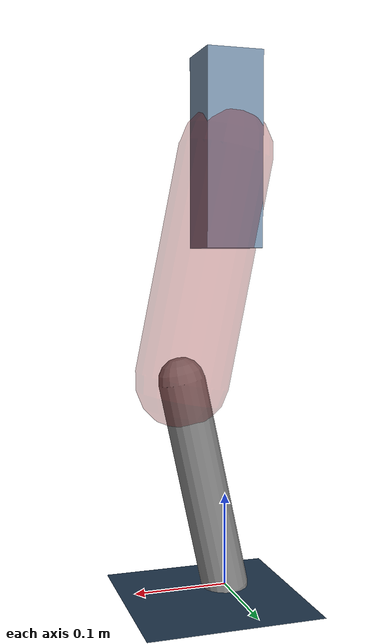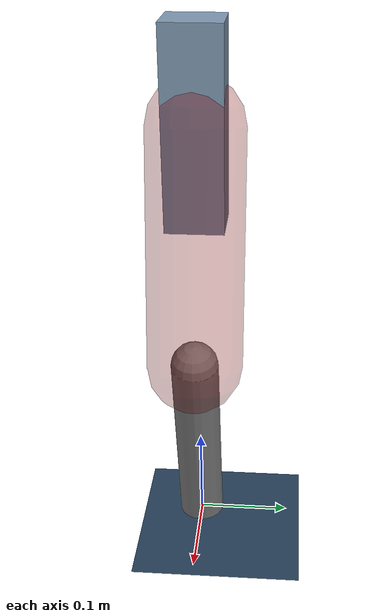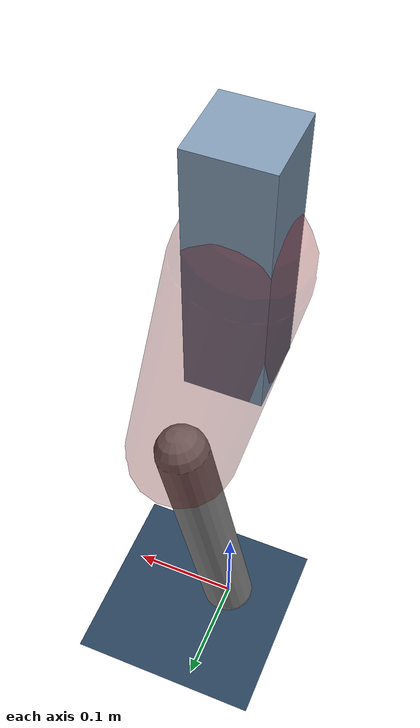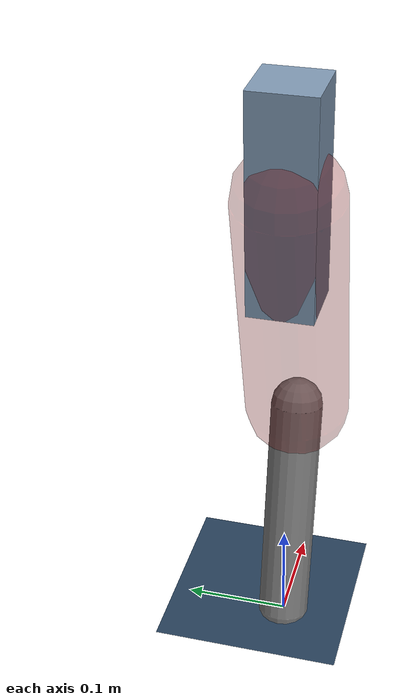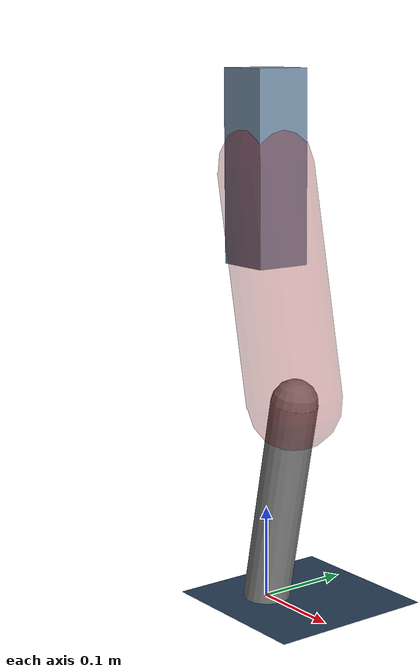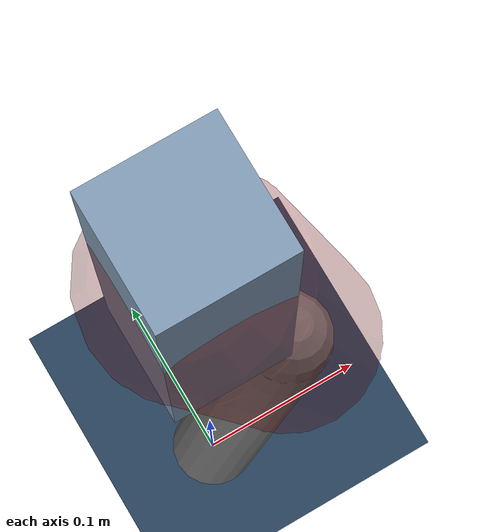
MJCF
<mujoco model="Hopper2D">
	<compiler inertiafromgeom="true" angle="radian" />
	<option timestep="0.001" integrator="implicit" cone="elliptic" solver="Newton" tolerance="1e-10" />

	<default>
		<geom contype="1" conaffinity="1" condim="3" friction="2 0.005 0.0001" solref="0.005 1" />
		<joint limited="true" damping="0.1" />
	</default>

	<asset>
		<texture name="skybox" type="skybox" builtin="gradient" rgb1=".4 .6 .8" rgb2="0 0 0" width="800" height="800" />
		<texture name="grid" type="2d" builtin="checker" rgb1=".1 .2 .3" rgb2=".2 .3 .4" width="300" height="300" mark="edge" markrgb=".2 .3 .4" />
		<material name="ground" texture="grid" texrepeat="1 1" texuniform="true" reflectance="0.1" />
		<material name="leg" rgba="0.5 0.6 0.7 1" />
	</asset>

	<worldbody>

		<geom name="floor" type="plane" size="5 5 0.25" material="ground" />

		<light directional="false" diffuse="0.8 0.8 0.8" specular="0.3 0.3 0.3" pos="0 0 2" dir="0 0 -1" />
		<light mode="targetbodycom" target="base" directional="false" diffuse="0.8 0.8 0.8" specular="0.3 0.3 0.3" pos="0 0 2" dir="0 0 -1" />

		<camera name="fixed" pos="0 -2 1" xyaxes="1 0 0 0 0 1" />
		<camera name="tracking" mode="trackcom" pos="0 -3 1" />

		<body name="root" pos="0 0 0.46391266159865896">
			<joint name="slide_x" type="slide" axis="1 0 0" range="-100 100" />
			<joint name="slide_z" type="slide" axis="0 0 1" range="0 10" />

			<body name="base" pos="0 0 0">
				<geom name="torso" type="box" size="0.03 0.03 0.1" mass="3.1109999999999998" material="leg" />

				<body name="link1" pos="0 0 0" euler="0 1.3707994913185462 0">
					<joint type="hinge" axis="0 -1 0" pos="0 0 0" name="hinge1" limited="true" range="-3.14 3.14" stiffness="0" damping="0.1" />
					<geom name="thigh" type="capsule" fromto="0 0 0 0.24362800840085816 0 0" size="0.05" rgba="0.5 0 0 0.3" mass="0.8399328218422313" />

					<body name="link2" pos="0.24362800840085816 0 0" euler="0 0.411753369683231 0">
						<joint type="hinge" axis="0 -1 0" pos="0 0 0" name="hinge2" limited="true" range="-3.14 3.14" stiffness="0" damping="0.1" />
						<geom name="shank" type="capsule" fromto="0 0 0 0.23028465319780078 0 0" size="0.025" mass="0.4262277225582406" />

					</body>
				</body>
			</body>
		</body>
	</worldbody>

	<actuator>
		<motor name="torque1" joint="hinge1" ctrlrange="-56.92575393064231 56.92575393064231" ctrllimited="true" gear="1" />
		<motor name="torque2" joint="hinge2" ctrlrange="-192.47165955830064 192.47165955830064" ctrllimited="true" gear="1" />
	</actuator>
</mujoco>
